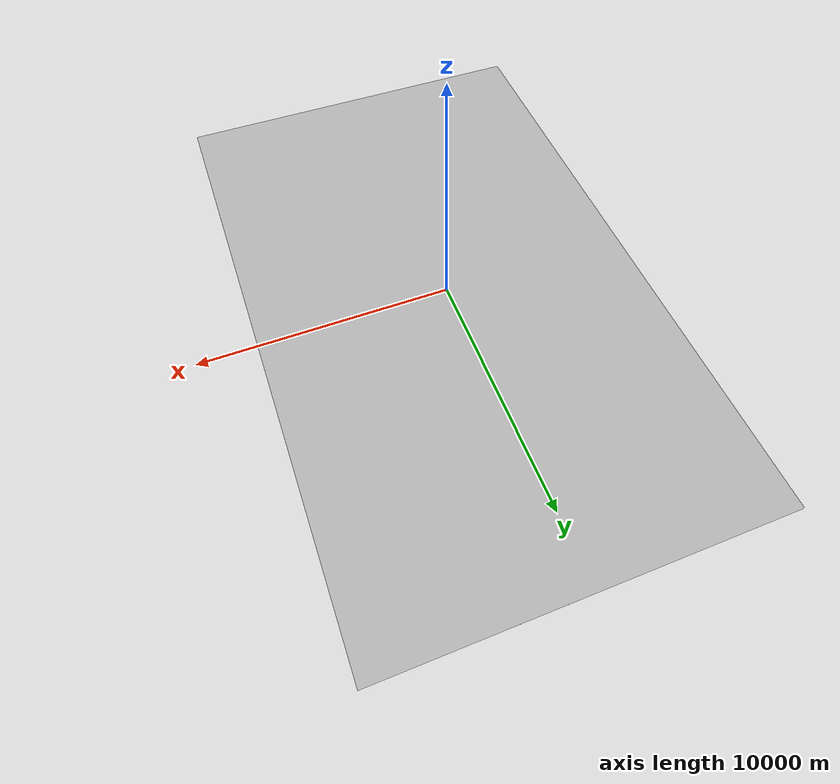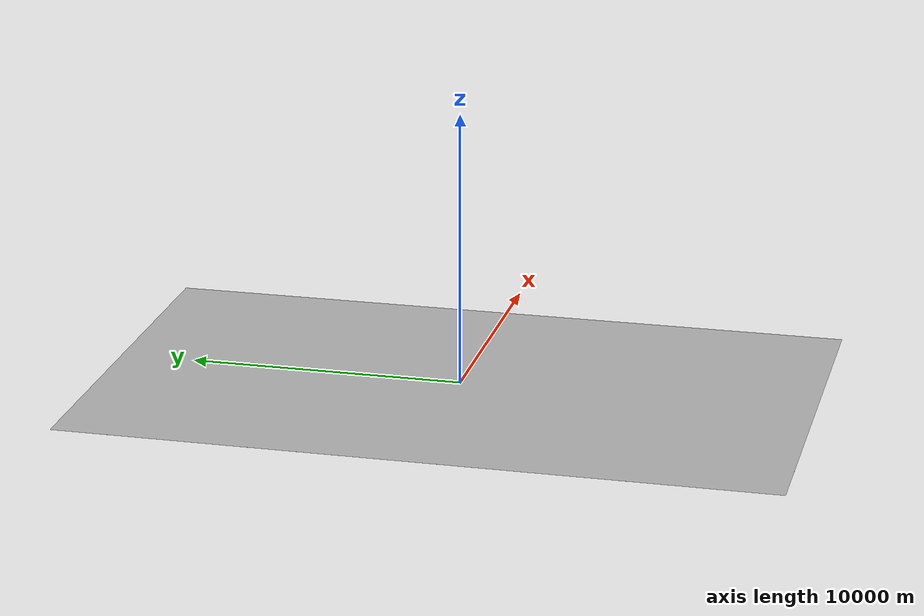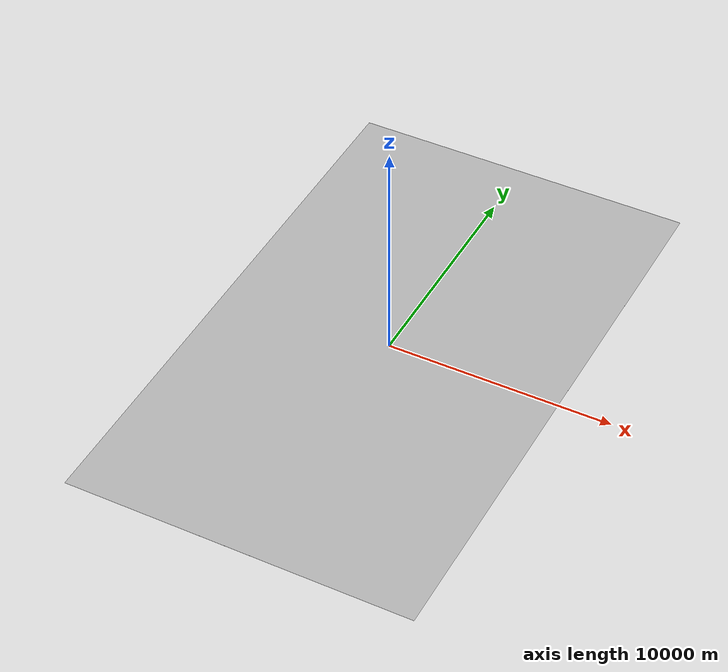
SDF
<?xml version="1.0" ?>
<sdf version="1.4">
  <model name="australia_plane">
    <static>true</static>
    <link name="link">
      <collision name="collision">
        <geometry>
          <box>
            <size>15329 25569 .1</size>
          </box>
        </geometry>
      </collision>
      <visual name="visual">
        <cast_shadows>false</cast_shadows>
        <geometry>
          <box>
            <size>15329 25569 .1</size>
          </box>
        </geometry>
        <material>
          <script>
            <uri>model://australia_plane/materials/scripts</uri>
            <uri>model://australia_plane/materials/textures</uri>
            <name>vrc/australia</name>
          </script>
        </material>
      </visual>
    </link>
  </model>
</sdf>
